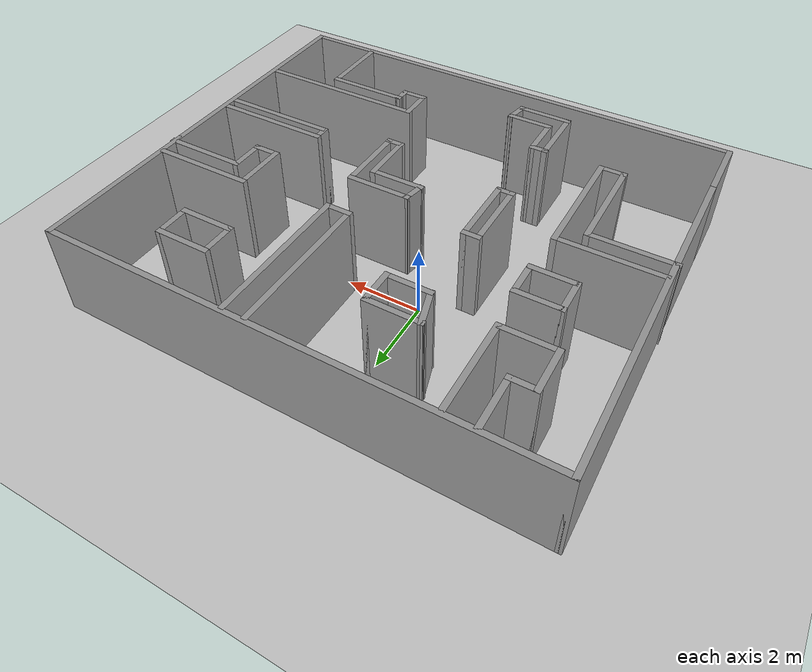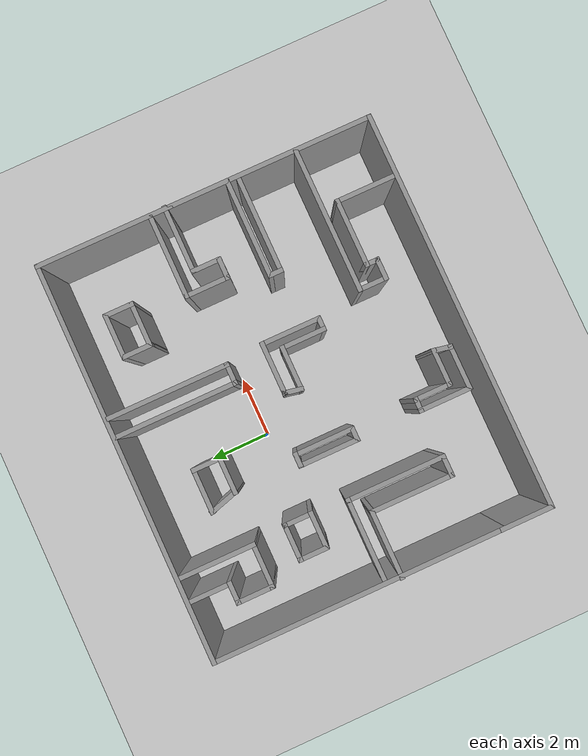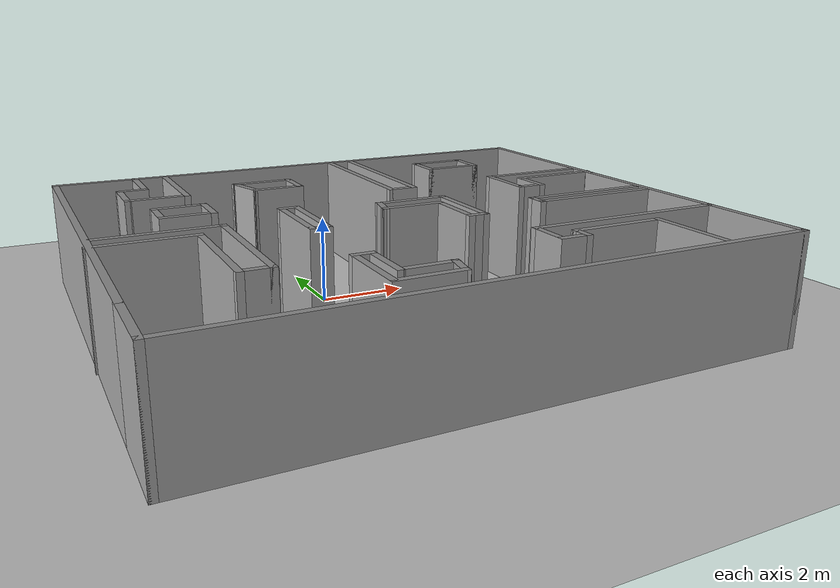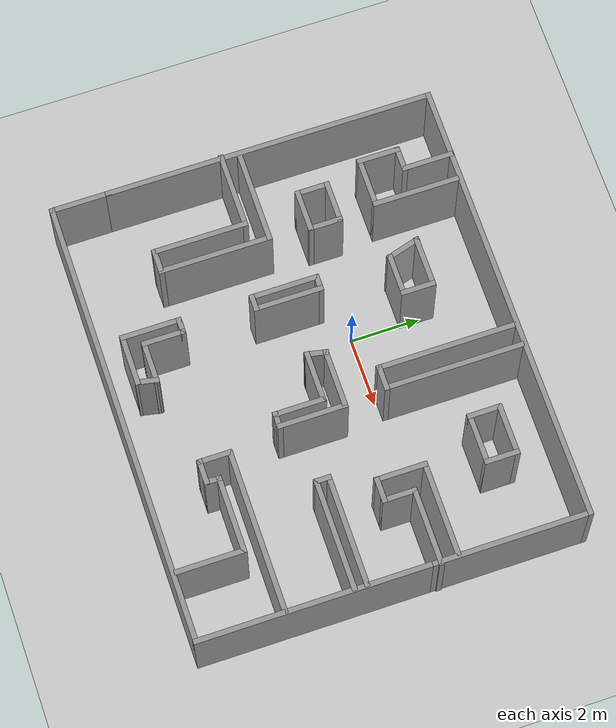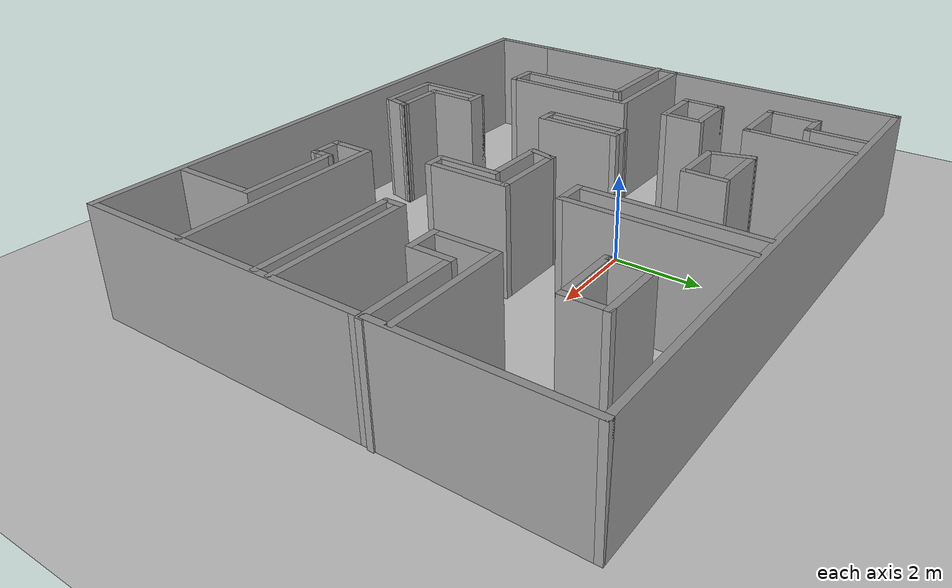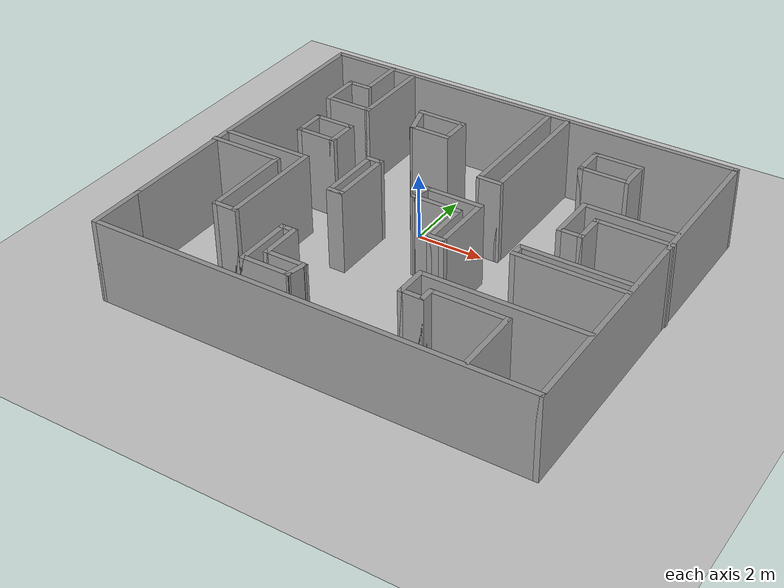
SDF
<sdf version="1.7">
 <world name="default">
  <light name="sun" type="directional">
   <pose>0 0 10 0 -0 0</pose>
   <diffuse>0.8 0.8 0.8 1</diffuse>
   <specular>0.2 0.2 0.2 1</specular>
   <attenuation>
    <range>1000</range>
    <constant>0.9</constant>
    <linear>0.01</linear>
    <quadratic>0.001</quadratic>
   </attenuation>
   <direction>-0.5 0.1 -0.9</direction>
   <spot><inner_angle>0</inner_angle><outer_angle>0</outer_angle><falloff>0</falloff></spot>
  </light>
  <model name="ground_plane">
   <static>1</static>
   <link name="link">
    <collision name="collision">
     <geometry><plane><normal>0 0 1</normal><size>100 100</size></plane></geometry>
     <surface><friction><ode><mu>100</mu><mu2>50</mu2></ode></friction></surface>
    </collision>
    <visual name="visual">
     <cast_shadows>0</cast_shadows>
     <geometry><plane><normal>0 0 1</normal><size>100 100</size></plane></geometry>
     <material>
      <script><uri>file://media/materials/scripts/gazebo.material</uri><name>Gazebo/Grey</name></script>
     </material>
    </visual>
   </link>
  </model>
  <gravity>0 0 -9.8</gravity>
  <magnetic_field>6e-06 2.3e-05 -4.2e-05</magnetic_field>
  <atmosphere type="adiabatic"/>
  <physics type="ode">
   <max_step_size>0.001</max_step_size>
   <real_time_factor>1</real_time_factor>
   <real_time_update_rate>1000</real_time_update_rate>
  </physics>
  <scene><ambient>0.4 0.4 0.4 1</ambient><background>0.7 0.7 0.7 1</background><shadows>1</shadows></scene>
  <audio><device>default</device></audio>
  <spherical_coordinates>
   <surface_model>EARTH_WGS84</surface_model>
   <latitude_deg>0</latitude_deg>
   <longitude_deg>0</longitude_deg>
   <elevation>0</elevation>
   <heading_deg>0</heading_deg>
  </spherical_coordinates>
  <model name="world1_test_turtlebot">
   <pose>1.04362 -1.395 0 0 -0 0</pose>
   <link name="Wall_102">
    <collision name="Wall_102_Collision">
     <geometry><box><size>0.5 0.15 2.5</size></box></geometry>
     <pose>0 0 1.25 0 -0 0</pose>
    </collision>
    <visual name="Wall_102_Visual">
     <pose>0 0 1.25 0 -0 0</pose>
     <geometry><box><size>0.5 0.15 2.5</size></box></geometry>
     <material>
      <script><uri>file://media/materials/scripts/gazebo.material</uri><name>Gazebo/Grey</name></script>
      <ambient>1 1 1 1</ambient>
     </material>
     <meta><layer>0</layer></meta>
    </visual>
    <pose>-2.06775 -3.15934 0 0 -0 0</pose>
   </link>
   <link name="Wall_103">
    <collision name="Wall_103_Collision">
     <geometry><box><size>1.25 0.15 2.5</size></box></geometry>
     <pose>0 0 1.25 0 -0 0</pose>
    </collision>
    <visual name="Wall_103_Visual">
     <pose>0 0 1.25 0 -0 0</pose>
     <geometry><box><size>1.25 0.15 2.5</size></box></geometry>
     <material>
      <script><uri>file://media/materials/scripts/gazebo.material</uri><name>Gazebo/Grey</name></script>
      <ambient>1 1 1 1</ambient>
     </material>
     <meta><layer>0</layer></meta>
    </visual>
    <pose>-1.89275 -3.70934 0 0 -0 -1.5708</pose>
   </link>
   <link name="Wall_104">
    <collision name="Wall_104_Collision">
     <geometry><box><size>1.25 0.15 2.5</size></box></geometry>
     <pose>0 0 1.25 0 -0 0</pose>
    </collision>
    <visual name="Wall_104_Visual">
     <pose>0 0 1.25 0 -0 0</pose>
     <geometry><box><size>1.25 0.15 2.5</size></box></geometry>
     <material>
      <script><uri>file://media/materials/scripts/gazebo.material</uri><name>Gazebo/Grey</name></script>
      <ambient>1 1 1 1</ambient>
     </material>
     <meta><layer>0</layer></meta>
    </visual>
    <pose>-1.34275 -4.25934 0 0 -0 0</pose>
   </link>
   <link name="Wall_106">
    <collision name="Wall_106_Collision">
     <geometry><box><size>0.659902 0.15 2.5</size></box></geometry>
     <pose>0 0 1.25 0 -0 0</pose>
    </collision>
    <visual name="Wall_106_Visual">
     <pose>0 0 1.25 0 -0 0</pose>
     <geometry><box><size>0.659902 0.15 2.5</size></box></geometry>
     <material>
      <script><uri>file://media/materials/scripts/gazebo.material</uri><name>Gazebo/Grey</name></script>
      <ambient>1 1 1 1</ambient>
     </material>
     <meta><layer>0</layer></meta>
    </visual>
    <pose>-0.842751 -4.50934 0 0 -0 1.3734</pose>
   </link>
   <link name="Wall_108">
    <collision name="Wall_108_Collision">
     <geometry><box><size>1.75 0.15 2.5</size></box></geometry>
     <pose>0 0 1.25 0 -0 0</pose>
    </collision>
    <visual name="Wall_108_Visual">
     <pose>0 0 1.25 0 -0 0</pose>
     <geometry><box><size>1.75 0.15 2.5</size></box></geometry>
     <material>
      <script><uri>file://media/materials/scripts/gazebo.material</uri><name>Gazebo/Grey</name></script>
      <ambient>1 1 1 1</ambient>
     </material>
     <meta><layer>0</layer></meta>
    </visual>
    <pose>0.708396 0.310249 0 0 -0 0</pose>
   </link>
   <link name="Wall_109">
    <collision name="Wall_109_Collision">
     <geometry><box><size>2 0.15 2.5</size></box></geometry>
     <pose>0 0 1.25 0 -0 0</pose>
    </collision>
    <visual name="Wall_109_Visual">
     <pose>0 0 1.25 0 -0 0</pose>
     <geometry><box><size>2 0.15 2.5</size></box></geometry>
     <material>
      <script><uri>file://media/materials/scripts/gazebo.material</uri><name>Gazebo/Grey</name></script>
      <ambient>1 1 1 1</ambient>
     </material>
     <meta><layer>0</layer></meta>
    </visual>
    <pose>1.5084 -0.614751 0 0 -0 -1.5708</pose>
   </link>
   <link name="Wall_110">
    <collision name="Wall_110_Collision">
     <geometry><box><size>0.5 0.15 2.5</size></box></geometry>
     <pose>0 0 1.25 0 -0 0</pose>
    </collision>
    <visual name="Wall_110_Visual">
     <pose>0 0 1.25 0 -0 0</pose>
     <geometry><box><size>0.5 0.15 2.5</size></box></geometry>
     <material>
      <script><uri>file://media/materials/scripts/gazebo.material</uri><name>Gazebo/Grey</name></script>
      <ambient>1 1 1 1</ambient>
     </material>
     <meta><layer>0</layer></meta>
    </visual>
    <pose>1.3334 -1.53975 0 0 -0 3.14159</pose>
   </link>
   <link name="Wall_111">
    <collision name="Wall_111_Collision">
     <geometry><box><size>1.5 0.15 2.5</size></box></geometry>
     <pose>0 0 1.25 0 -0 0</pose>
    </collision>
    <visual name="Wall_111_Visual">
     <pose>0 0 1.25 0 -0 0</pose>
     <geometry><box><size>1.5 0.15 2.5</size></box></geometry>
     <material>
      <script><uri>file://media/materials/scripts/gazebo.material</uri><name>Gazebo/Grey</name></script>
      <ambient>1 1 1 1</ambient>
     </material>
     <meta><layer>0</layer></meta>
    </visual>
    <pose>1.1584 -0.864751 0 0 -0 1.5708</pose>
   </link>
   <link name="Wall_112">
    <collision name="Wall_112_Collision">
     <geometry><box><size>1.5 0.15 2.5</size></box></geometry>
     <pose>0 0 1.25 0 -0 0</pose>
    </collision>
    <visual name="Wall_112_Visual">
     <pose>0 0 1.25 0 -0 0</pose>
     <geometry><box><size>1.5 0.15 2.5</size></box></geometry>
     <material>
      <script><uri>file://media/materials/scripts/gazebo.material</uri><name>Gazebo/Grey</name></script>
      <ambient>1 1 1 1</ambient>
     </material>
     <meta><layer>0</layer></meta>
    </visual>
    <pose>0.483396 -0.189751 0 0 -0 3.14159</pose>
   </link>
   <link name="Wall_113">
    <collision name="Wall_113_Collision">
     <geometry><box><size>0.659902 0.15 2.5</size></box></geometry>
     <pose>0 0 1.25 0 -0 0</pose>
    </collision>
    <visual name="Wall_113_Visual">
     <pose>0 0 1.25 0 -0 0</pose>
     <geometry><box><size>0.659902 0.15 2.5</size></box></geometry>
     <material>
      <script><uri>file://media/materials/scripts/gazebo.material</uri><name>Gazebo/Grey</name></script>
      <ambient>1 1 1 1</ambient>
     </material>
     <meta><layer>0</layer></meta>
    </visual>
    <pose>-0.141604 0.060249 0 0 -0 1.3734</pose>
   </link>
   <link name="Wall_115">
    <collision name="Wall_115_Collision">
     <geometry><box><size>2 0.15 2.5</size></box></geometry>
     <pose>0 0 1.25 0 -0 0</pose>
    </collision>
    <visual name="Wall_115_Visual">
     <pose>0 0 1.25 0 -0 0</pose>
     <geometry><box><size>2 0.15 2.5</size></box></geometry>
     <material>
      <script><uri>file://media/materials/scripts/gazebo.material</uri><name>Gazebo/Grey</name></script>
      <ambient>1 1 1 1</ambient>
     </material>
     <meta><layer>0</layer></meta>
    </visual>
    <pose>-2.24275 -0.152138 0 0 -0 -1.5708</pose>
   </link>
   <link name="Wall_116">
    <collision name="Wall_116_Collision">
     <geometry><box><size>0.5 0.15 2.5</size></box></geometry>
     <pose>0 0 1.25 0 -0 0</pose>
    </collision>
    <visual name="Wall_116_Visual">
     <pose>0 0 1.25 0 -0 0</pose>
     <geometry><box><size>0.5 0.15 2.5</size></box></geometry>
     <material>
      <script><uri>file://media/materials/scripts/gazebo.material</uri><name>Gazebo/Grey</name></script>
      <ambient>1 1 1 1</ambient>
     </material>
     <meta><layer>0</layer></meta>
    </visual>
    <pose>-2.06775 -1.07714 0 0 -0 0</pose>
   </link>
   <link name="Wall_117">
    <collision name="Wall_117_Collision">
     <geometry><box><size>2 0.15 2.5</size></box></geometry>
     <pose>0 0 1.25 0 -0 0</pose>
    </collision>
    <visual name="Wall_117_Visual">
     <pose>0 0 1.25 0 -0 0</pose>
     <geometry><box><size>2 0.15 2.5</size></box></geometry>
     <material>
      <script><uri>file://media/materials/scripts/gazebo.material</uri><name>Gazebo/Grey</name></script>
      <ambient>1 1 1 1</ambient>
     </material>
     <meta><layer>0</layer></meta>
    </visual>
    <pose>-1.89275 -0.152138 0 0 -0 1.5708</pose>
   </link>
   <link name="Wall_118">
    <collision name="Wall_118_Collision">
     <geometry><box><size>0.5 0.15 2.5</size></box></geometry>
     <pose>0 0 1.25 0 -0 0</pose>
    </collision>
    <visual name="Wall_118_Visual">
     <pose>0 0 1.25 0 -0 0</pose>
     <geometry><box><size>0.5 0.15 2.5</size></box></geometry>
     <material>
      <script><uri>file://media/materials/scripts/gazebo.material</uri><name>Gazebo/Grey</name></script>
      <ambient>1 1 1 1</ambient>
     </material>
     <meta><layer>0</layer></meta>
    </visual>
    <pose>-2.06775 0.772861 0 0 -0 3.14159</pose>
   </link>
   <link name="Wall_16">
    <collision name="Wall_16_Collision">
     <geometry><box><size>1.75 0.15 2.5</size></box></geometry>
     <pose>0 0 1.25 0 -0 0</pose>
    </collision>
    <visual name="Wall_16_Visual">
     <pose>0 0 1.25 0 -0 0</pose>
     <geometry><box><size>1.75 0.15 2.5</size></box></geometry>
     <material>
      <script><uri>file://media/materials/scripts/gazebo.material</uri><name>Gazebo/Grey</name></script>
      <ambient>1 1 1 1</ambient>
     </material>
     <meta><layer>0</layer></meta>
    </visual>
    <pose>-6.42362 -4.675 0 0 -0 -1.5708</pose>
   </link>
   <link name="Wall_17">
    <collision name="Wall_17_Collision">
     <geometry><box><size>13 0.15 2.5</size></box></geometry>
     <pose>0 0 1.25 0 -0 0</pose>
    </collision>
    <visual name="Wall_17_Visual">
     <pose>0 0 1.25 0 -0 0</pose>
     <geometry><box><size>13 0.15 2.5</size></box></geometry>
     <material>
      <script><uri>file://media/materials/scripts/gazebo.material</uri><name>Gazebo/Grey</name></script>
      <ambient>1 1 1 1</ambient>
     </material>
     <meta><layer>0</layer></meta>
    </visual>
    <pose>0.001382 -5.475 0 0 -0 0</pose>
   </link>
   <link name="Wall_18">
    <collision name="Wall_18_Collision">
     <geometry><box><size>6.75 0.15 2.5</size></box></geometry>
     <pose>0 0 1.25 0 -0 0</pose>
    </collision>
    <visual name="Wall_18_Visual">
     <pose>0 0 1.25 0 -0 0</pose>
     <geometry><box><size>6.75 0.15 2.5</size></box></geometry>
     <material>
      <script><uri>file://media/materials/scripts/gazebo.material</uri><name>Gazebo/Grey</name></script>
      <ambient>1 1 1 1</ambient>
     </material>
     <meta><layer>0</layer></meta>
    </visual>
    <pose>6.42638 -2.175 0 0 -0 1.5708</pose>
   </link>
   <link name="Wall_20">
    <collision name="Wall_20_Collision">
     <geometry><box><size>4.5 0.15 2.5</size></box></geometry>
     <pose>0 0 1.25 0 -0 0</pose>
    </collision>
    <visual name="Wall_20_Visual">
     <pose>0 0 1.25 0 -0 0</pose>
     <geometry><box><size>4.5 0.15 2.5</size></box></geometry>
     <material>
      <script><uri>file://media/materials/scripts/gazebo.material</uri><name>Gazebo/Grey</name></script>
      <ambient>1 1 1 1</ambient>
     </material>
     <meta><layer>0</layer></meta>
    </visual>
    <pose>6.42638 3.3 0 0 -0 1.5708</pose>
   </link>
   <link name="Wall_23">
    <collision name="Wall_23_Collision">
     <geometry><box><size>9.5 0.15 2.5</size></box></geometry>
     <pose>0 0 1.25 0 -0 0</pose>
    </collision>
    <visual name="Wall_23_Visual">
     <pose>0 0 1.25 0 -0 0</pose>
     <geometry><box><size>9.5 0.15 2.5</size></box></geometry>
     <material>
      <script><uri>file://media/materials/scripts/gazebo.material</uri><name>Gazebo/Grey</name></script>
      <ambient>1 1 1 1</ambient>
     </material>
     <meta><layer>0</layer></meta>
    </visual>
    <pose>-6.42362 0.8 0 0 -0 1.5708</pose>
   </link>
   <link name="Wall_25">
    <collision name="Wall_25_Collision">
     <geometry><box><size>13 0.15 2.5</size></box></geometry>
     <pose>0 0 1.25 0 -0 0</pose>
    </collision>
    <visual name="Wall_25_Visual">
     <pose>0 0 1.25 0 -0 0</pose>
     <geometry><box><size>13 0.15 2.5</size></box></geometry>
     <material>
      <script><uri>file://media/materials/scripts/gazebo.material</uri><name>Gazebo/Grey</name></script>
      <ambient>1 1 1 1</ambient>
     </material>
     <meta><layer>0</layer></meta>
    </visual>
    <pose>0.001382 5.475 0 0 -0 0</pose>
   </link>
   <link name="Wall_27">
    <collision name="Wall_27_Collision">
     <geometry><box><size>2.75 0.15 2.5</size></box></geometry>
     <pose>0 0 1.25 0 -0 0</pose>
    </collision>
    <visual name="Wall_27_Visual">
     <pose>0 0 1.25 0 -0 0</pose>
     <geometry><box><size>2.75 0.15 2.5</size></box></geometry>
     <material>
      <script><uri>file://media/materials/scripts/gazebo.material</uri><name>Gazebo/Grey</name></script>
      <ambient>1 1 1 1</ambient>
     </material>
     <meta><layer>0</layer></meta>
    </visual>
    <pose>5.06 1.78351 0 0 -0 3.14159</pose>
   </link>
   <link name="Wall_28">
    <collision name="Wall_28_Collision">
     <geometry><box><size>1.5 0.15 2.5</size></box></geometry>
     <pose>0 0 1.25 0 -0 0</pose>
    </collision>
    <visual name="Wall_28_Visual">
     <pose>0 0 1.25 0 -0 0</pose>
     <geometry><box><size>1.5 0.15 2.5</size></box></geometry>
     <material>
      <script><uri>file://media/materials/scripts/gazebo.material</uri><name>Gazebo/Grey</name></script>
      <ambient>1 1 1 1</ambient>
     </material>
     <meta><layer>0</layer></meta>
    </visual>
    <pose>3.76 1.10851 0 0 -0 -1.5708</pose>
   </link>
   <link name="Wall_29">
    <collision name="Wall_29_Collision">
     <geometry><box><size>0.75 0.15 2.5</size></box></geometry>
     <pose>0 0 1.25 0 -0 0</pose>
    </collision>
    <visual name="Wall_29_Visual">
     <pose>0 0 1.25 0 -0 0</pose>
     <geometry><box><size>0.75 0.15 2.5</size></box></geometry>
     <material>
      <script><uri>file://media/materials/scripts/gazebo.material</uri><name>Gazebo/Grey</name></script>
      <ambient>1 1 1 1</ambient>
     </material>
     <meta><layer>0</layer></meta>
    </visual>
    <pose>4.06 0.433515 0 0 -0 0</pose>
   </link>
   <link name="Wall_30">
    <collision name="Wall_30_Collision">
     <geometry><box><size>1 0.15 2.5</size></box></geometry>
     <pose>0 0 1.25 0 -0 0</pose>
    </collision>
    <visual name="Wall_30_Visual">
     <pose>0 0 1.25 0 -0 0</pose>
     <geometry><box><size>1 0.15 2.5</size></box></geometry>
     <material>
      <script><uri>file://media/materials/scripts/gazebo.material</uri><name>Gazebo/Grey</name></script>
      <ambient>1 1 1 1</ambient>
     </material>
     <meta><layer>0</layer></meta>
    </visual>
    <pose>4.36 0.858515 0 0 -0 1.5708</pose>
   </link>
   <link name="Wall_31">
    <collision name="Wall_31_Collision">
     <geometry><box><size>2.25 0.15 2.5</size></box></geometry>
     <pose>0 0 1.25 0 -0 0</pose>
    </collision>
    <visual name="Wall_31_Visual">
     <pose>0 0 1.25 0 -0 0</pose>
     <geometry><box><size>2.25 0.15 2.5</size></box></geometry>
     <material>
      <script><uri>file://media/materials/scripts/gazebo.material</uri><name>Gazebo/Grey</name></script>
      <ambient>1 1 1 1</ambient>
     </material>
     <meta><layer>0</layer></meta>
    </visual>
    <pose>5.41 1.28351 0 0 -0 0</pose>
   </link>
   <link name="Wall_33">
    <collision name="Wall_33_Collision">
     <geometry><box><size>3.25 0.15 2.5</size></box></geometry>
     <pose>0 0 1.25 0 -0 0</pose>
    </collision>
    <visual name="Wall_33_Visual">
     <pose>0 0 1.25 0 -0 0</pose>
     <geometry><box><size>3.25 0.15 2.5</size></box></geometry>
     <material>
      <script><uri>file://media/materials/scripts/gazebo.material</uri><name>Gazebo/Grey</name></script>
      <ambient>1 1 1 1</ambient>
     </material>
     <meta><layer>0</layer></meta>
    </visual>
    <pose>4.84059 -0.755474 0 0 -0 3.14159</pose>
   </link>
   <link name="Wall_36">
    <collision name="Wall_36_Collision">
     <geometry><box><size>0.5 0.15 2.5</size></box></geometry>
     <pose>0 0 1.25 0 -0 0</pose>
    </collision>
    <visual name="Wall_36_Visual">
     <pose>0 0 1.25 0 -0 0</pose>
     <geometry><box><size>0.5 0.15 2.5</size></box></geometry>
     <material>
      <script><uri>file://media/materials/scripts/gazebo.material</uri><name>Gazebo/Grey</name></script>
      <ambient>1 1 1 1</ambient>
     </material>
     <meta><layer>0</layer></meta>
    </visual>
    <pose>3.29059 -0.930474 0 0 -0 -1.5708</pose>
   </link>
   <link name="Wall_37">
    <collision name="Wall_37_Collision">
     <geometry><box><size>3.25 0.15 2.5</size></box></geometry>
     <pose>0 0 1.25 0 -0 0</pose>
    </collision>
    <visual name="Wall_37_Visual">
     <pose>0 0 1.25 0 -0 0</pose>
     <geometry><box><size>3.25 0.15 2.5</size></box></geometry>
     <material>
      <script><uri>file://media/materials/scripts/gazebo.material</uri><name>Gazebo/Grey</name></script>
      <ambient>1 1 1 1</ambient>
     </material>
     <meta><layer>0</layer></meta>
    </visual>
    <pose>4.84059 -1.10547 0 0 -0 0</pose>
   </link>
   <link name="Wall_39">
    <collision name="Wall_39_Collision">
     <geometry><box><size>1.5 0.15 2.5</size></box></geometry>
     <pose>0 0 1.25 0 -0 0</pose>
    </collision>
    <visual name="Wall_39_Visual">
     <pose>0 0 1.25 0 -0 0</pose>
     <geometry><box><size>1.5 0.15 2.5</size></box></geometry>
     <material>
      <script><uri>file://media/materials/scripts/gazebo.material</uri><name>Gazebo/Grey</name></script>
      <ambient>1 1 1 1</ambient>
     </material>
     <meta><layer>0</layer></meta>
    </visual>
    <pose>-4.53012 4.77934 0 0 -0 -1.5708</pose>
   </link>
   <link name="Wall_40">
    <collision name="Wall_40_Collision">
     <geometry><box><size>0.75 0.15 2.5</size></box></geometry>
     <pose>0 0 1.25 0 -0 0</pose>
    </collision>
    <visual name="Wall_40_Visual">
     <pose>0 0 1.25 0 -0 0</pose>
     <geometry><box><size>0.75 0.15 2.5</size></box></geometry>
     <material>
      <script><uri>file://media/materials/scripts/gazebo.material</uri><name>Gazebo/Grey</name></script>
      <ambient>1 1 1 1</ambient>
     </material>
     <meta><layer>0</layer></meta>
    </visual>
    <pose>-4.83012 4.10434 0 0 -0 3.14159</pose>
   </link>
   <link name="Wall_41">
    <collision name="Wall_41_Collision">
     <geometry><box><size>1.25 0.15 2.5</size></box></geometry>
     <pose>0 0 1.25 0 -0 0</pose>
    </collision>
    <visual name="Wall_41_Visual">
     <pose>0 0 1.25 0 -0 0</pose>
     <geometry><box><size>1.25 0.15 2.5</size></box></geometry>
     <material>
      <script><uri>file://media/materials/scripts/gazebo.material</uri><name>Gazebo/Grey</name></script>
      <ambient>1 1 1 1</ambient>
     </material>
     <meta><layer>0</layer></meta>
    </visual>
    <pose>-5.13012 3.55434 0 0 -0 -1.5708</pose>
   </link>
   <link name="Wall_42">
    <collision name="Wall_42_Collision">
     <geometry><box><size>1.5 0.15 2.5</size></box></geometry>
     <pose>0 0 1.25 0 -0 0</pose>
    </collision>
    <visual name="Wall_42_Visual">
     <pose>0 0 1.25 0 -0 0</pose>
     <geometry><box><size>1.5 0.15 2.5</size></box></geometry>
     <material>
      <script><uri>file://media/materials/scripts/gazebo.material</uri><name>Gazebo/Grey</name></script>
      <ambient>1 1 1 1</ambient>
     </material>
     <meta><layer>0</layer></meta>
    </visual>
    <pose>-4.45512 3.00434 0 0 -0 0</pose>
   </link>
   <link name="Wall_43">
    <collision name="Wall_43_Collision">
     <geometry><box><size>2.5 0.15 2.5</size></box></geometry>
     <pose>0 0 1.25 0 -0 0</pose>
    </collision>
    <visual name="Wall_43_Visual">
     <pose>0 0 1.25 0 -0 0</pose>
     <geometry><box><size>2.5 0.15 2.5</size></box></geometry>
     <material>
      <script><uri>file://media/materials/scripts/gazebo.material</uri><name>Gazebo/Grey</name></script>
      <ambient>1 1 1 1</ambient>
     </material>
     <meta><layer>0</layer></meta>
    </visual>
    <pose>-3.78012 4.17934 0 0 -0 1.5708</pose>
   </link>
   <link name="Wall_47">
    <collision name="Wall_47_Collision">
     <geometry><box><size>1 0.15 2.5</size></box></geometry>
     <pose>0 0 1.25 0 -0 0</pose>
    </collision>
    <visual name="Wall_47_Visual">
     <pose>0 0 1.25 0 -0 0</pose>
     <geometry><box><size>1 0.15 2.5</size></box></geometry>
     <material>
      <script><uri>file://media/materials/scripts/gazebo.material</uri><name>Gazebo/Grey</name></script>
      <ambient>1 1 1 1</ambient>
     </material>
     <meta><layer>0</layer></meta>
    </visual>
    <pose>-4.75719 1.50007 0 0 -0 -1.5708</pose>
   </link>
   <link name="Wall_48">
    <collision name="Wall_48_Collision">
     <geometry><box><size>1.25 0.15 2.5</size></box></geometry>
     <pose>0 0 1.25 0 -0 0</pose>
    </collision>
    <visual name="Wall_48_Visual">
     <pose>0 0 1.25 0 -0 0</pose>
     <geometry><box><size>1.25 0.15 2.5</size></box></geometry>
     <material>
      <script><uri>file://media/materials/scripts/gazebo.material</uri><name>Gazebo/Grey</name></script>
      <ambient>1 1 1 1</ambient>
     </material>
     <meta><layer>0</layer></meta>
    </visual>
    <pose>-4.20719 1.07507 0 0 -0 0</pose>
   </link>
   <link name="Wall_51">
    <collision name="Wall_51_Collision">
     <geometry><box><size>1.25 0.15 2.5</size></box></geometry>
     <pose>0 0 1.25 0 -0 0</pose>
    </collision>
    <visual name="Wall_51_Visual">
     <pose>0 0 1.25 0 -0 0</pose>
     <geometry><box><size>1.25 0.15 2.5</size></box></geometry>
     <material>
      <script><uri>file://media/materials/scripts/gazebo.material</uri><name>Gazebo/Grey</name></script>
      <ambient>1 1 1 1</ambient>
     </material>
     <meta><layer>0</layer></meta>
    </visual>
    <pose>-4.20719 1.92507 0 0 -0 0</pose>
   </link>
   <link name="Wall_52">
    <collision name="Wall_52_Collision">
     <geometry><box><size>1 0.15 2.5</size></box></geometry>
     <pose>0 0 1.25 0 -0 0</pose>
    </collision>
    <visual name="Wall_52_Visual">
     <pose>0 0 1.25 0 -0 0</pose>
     <geometry><box><size>1 0.15 2.5</size></box></geometry>
     <material>
      <script><uri>file://media/materials/scripts/gazebo.material</uri><name>Gazebo/Grey</name></script>
      <ambient>1 1 1 1</ambient>
     </material>
     <meta><layer>0</layer></meta>
    </visual>
    <pose>-3.65719 1.50007 0 0 -0 -1.5708</pose>
   </link>
   <link name="Wall_60">
    <collision name="Wall_60_Collision">
     <geometry><box><size>4.75 0.15 2.5</size></box></geometry>
     <pose>0 0 1.25 0 -0 0</pose>
    </collision>
    <visual name="Wall_60_Visual">
     <pose>0 0 1.25 0 -0 0</pose>
     <geometry><box><size>4.75 0.15 2.5</size></box></geometry>
     <material>
      <script><uri>file://media/materials/scripts/gazebo.material</uri><name>Gazebo/Grey</name></script>
      <ambient>1 1 1 1</ambient>
     </material>
     <meta><layer>0</layer></meta>
    </visual>
    <pose>4.08497 -3.02056 0 0 -0 3.14159</pose>
   </link>
   <link name="Wall_61">
    <collision name="Wall_61_Collision">
     <geometry><box><size>1 0.15 2.5</size></box></geometry>
     <pose>0 0 1.25 0 -0 0</pose>
    </collision>
    <visual name="Wall_61_Visual">
     <pose>0 0 1.25 0 -0 0</pose>
     <geometry><box><size>1 0.15 2.5</size></box></geometry>
     <material>
      <script><uri>file://media/materials/scripts/gazebo.material</uri><name>Gazebo/Grey</name></script>
      <ambient>1 1 1 1</ambient>
     </material>
     <meta><layer>0</layer></meta>
    </visual>
    <pose>1.78497 -3.44556 0 0 -0 -1.5708</pose>
   </link>
   <link name="Wall_62">
    <collision name="Wall_62_Collision">
     <geometry><box><size>0.75 0.15 2.5</size></box></geometry>
     <pose>0 0 1.25 0 -0 0</pose>
    </collision>
    <visual name="Wall_62_Visual">
     <pose>0 0 1.25 0 -0 0</pose>
     <geometry><box><size>0.75 0.15 2.5</size></box></geometry>
     <material>
      <script><uri>file://media/materials/scripts/gazebo.material</uri><name>Gazebo/Grey</name></script>
      <ambient>1 1 1 1</ambient>
     </material>
     <meta><layer>0</layer></meta>
    </visual>
    <pose>2.08497 -3.87056 0 0 -0 0</pose>
   </link>
   <link name="Wall_63">
    <collision name="Wall_63_Collision">
     <geometry><box><size>0.5 0.15 2.5</size></box></geometry>
     <pose>0 0 1.25 0 -0 0</pose>
    </collision>
    <visual name="Wall_63_Visual">
     <pose>0 0 1.25 0 -0 0</pose>
     <geometry><box><size>0.5 0.15 2.5</size></box></geometry>
     <material>
      <script><uri>file://media/materials/scripts/gazebo.material</uri><name>Gazebo/Grey</name></script>
      <ambient>1 1 1 1</ambient>
     </material>
     <meta><layer>0</layer></meta>
    </visual>
    <pose>2.38497 -3.69556 0 0 -0 1.5708</pose>
   </link>
   <link name="Wall_64">
    <collision name="Wall_64_Collision">
     <geometry><box><size>2.25 0.15 2.5</size></box></geometry>
     <pose>0 0 1.25 0 -0 0</pose>
    </collision>
    <visual name="Wall_64_Visual">
     <pose>0 0 1.25 0 -0 0</pose>
     <geometry><box><size>2.25 0.15 2.5</size></box></geometry>
     <material>
      <script><uri>file://media/materials/scripts/gazebo.material</uri><name>Gazebo/Grey</name></script>
      <ambient>1 1 1 1</ambient>
     </material>
     <meta><layer>0</layer></meta>
    </visual>
    <pose>3.43497 -3.52056 0 0 -0 0</pose>
   </link>
   <link name="Wall_65">
    <collision name="Wall_65_Collision">
     <geometry><box><size>2 0.15 2.5</size></box></geometry>
     <pose>0 0 1.25 0 -0 0</pose>
    </collision>
    <visual name="Wall_65_Visual">
     <pose>0 0 1.25 0 -0 0</pose>
     <geometry><box><size>2 0.15 2.5</size></box></geometry>
     <material>
      <script><uri>file://media/materials/scripts/gazebo.material</uri><name>Gazebo/Grey</name></script>
      <ambient>1 1 1 1</ambient>
     </material>
     <meta><layer>0</layer></meta>
    </visual>
    <pose>4.48497 -4.44556 0 0 -0 -1.5708</pose>
   </link>
   <link name="Wall_67">
    <collision name="Wall_67_Collision">
     <geometry><box><size>1 0.15 2.5</size></box></geometry>
     <pose>0 0 1.25 0 -0 0</pose>
    </collision>
    <visual name="Wall_67_Visual">
     <pose>0 0 1.25 0 -0 0</pose>
     <geometry><box><size>1 0.15 2.5</size></box></geometry>
     <material>
      <script><uri>file://media/materials/scripts/gazebo.material</uri><name>Gazebo/Grey</name></script>
      <ambient>1 1 1 1</ambient>
     </material>
     <meta><layer>0</layer></meta>
    </visual>
    <pose>2.86911 3.79432 0 0 -0 -1.5708</pose>
   </link>
   <link name="Wall_68">
    <collision name="Wall_68_Collision">
     <geometry><box><size>1.5 0.15 2.5</size></box></geometry>
     <pose>0 0 1.25 0 -0 0</pose>
    </collision>
    <visual name="Wall_68_Visual">
     <pose>0 0 1.25 0 -0 0</pose>
     <geometry><box><size>1.5 0.15 2.5</size></box></geometry>
     <material>
      <script><uri>file://media/materials/scripts/gazebo.material</uri><name>Gazebo/Grey</name></script>
      <ambient>1 1 1 1</ambient>
     </material>
     <meta><layer>0</layer></meta>
    </visual>
    <pose>3.54411 3.36932 0 0 -0 0</pose>
   </link>
   <link name="Wall_69">
    <collision name="Wall_69_Collision">
     <geometry><box><size>1 0.15 2.5</size></box></geometry>
     <pose>0 0 1.25 0 -0 0</pose>
    </collision>
    <visual name="Wall_69_Visual">
     <pose>0 0 1.25 0 -0 0</pose>
     <geometry><box><size>1 0.15 2.5</size></box></geometry>
     <material>
      <script><uri>file://media/materials/scripts/gazebo.material</uri><name>Gazebo/Grey</name></script>
      <ambient>1 1 1 1</ambient>
     </material>
     <meta><layer>0</layer></meta>
    </visual>
    <pose>4.21911 3.79432 0 0 -0 1.5708</pose>
   </link>
   <link name="Wall_70">
    <collision name="Wall_70_Collision">
     <geometry><box><size>1.5 0.15 2.5</size></box></geometry>
     <pose>0 0 1.25 0 -0 0</pose>
    </collision>
    <visual name="Wall_70_Visual">
     <pose>0 0 1.25 0 -0 0</pose>
     <geometry><box><size>1.5 0.15 2.5</size></box></geometry>
     <material>
      <script><uri>file://media/materials/scripts/gazebo.material</uri><name>Gazebo/Grey</name></script>
      <ambient>1 1 1 1</ambient>
     </material>
     <meta><layer>0</layer></meta>
    </visual>
    <pose>3.54411 4.21932 0 0 -0 3.14159</pose>
   </link>
   <link name="Wall_78">
    <collision name="Wall_78_Collision">
     <geometry><box><size>2.75 0.15 2.5</size></box></geometry>
     <pose>0 0 1.25 0 -0 0</pose>
    </collision>
    <visual name="Wall_78_Visual">
     <pose>0 0 1.25 0 -0 0</pose>
     <geometry><box><size>2.75 0.15 2.5</size></box></geometry>
     <material>
      <script><uri>file://media/materials/scripts/gazebo.material</uri><name>Gazebo/Grey</name></script>
      <ambient>1 1 1 1</ambient>
     </material>
     <meta><layer>0</layer></meta>
    </visual>
    <pose>-5.06 -0.082971 0 0 -0 0</pose>
   </link>
   <link name="Wall_79">
    <collision name="Wall_79_Collision">
     <geometry><box><size>3.25 0.15 2.5</size></box></geometry>
     <pose>0 0 1.25 0 -0 0</pose>
    </collision>
    <visual name="Wall_79_Visual">
     <pose>0 0 1.25 0 -0 0</pose>
     <geometry><box><size>3.25 0.15 2.5</size></box></geometry>
     <material>
      <script><uri>file://media/materials/scripts/gazebo.material</uri><name>Gazebo/Grey</name></script>
      <ambient>1 1 1 1</ambient>
     </material>
     <meta><layer>0</layer></meta>
    </visual>
    <pose>-3.76 -1.63297 0 0 -0 -1.5708</pose>
   </link>
   <link name="Wall_80">
    <collision name="Wall_80_Collision">
     <geometry><box><size>0.75 0.15 2.5</size></box></geometry>
     <pose>0 0 1.25 0 -0 0</pose>
    </collision>
    <visual name="Wall_80_Visual">
     <pose>0 0 1.25 0 -0 0</pose>
     <geometry><box><size>0.75 0.15 2.5</size></box></geometry>
     <material>
      <script><uri>file://media/materials/scripts/gazebo.material</uri><name>Gazebo/Grey</name></script>
      <ambient>1 1 1 1</ambient>
     </material>
     <meta><layer>0</layer></meta>
    </visual>
    <pose>-4.06 -3.18297 0 0 -0 3.14159</pose>
   </link>
   <link name="Wall_81">
    <collision name="Wall_81_Collision">
     <geometry><box><size>2.75 0.15 2.5</size></box></geometry>
     <pose>0 0 1.25 0 -0 0</pose>
    </collision>
    <visual name="Wall_81_Visual">
     <pose>0 0 1.25 0 -0 0</pose>
     <geometry><box><size>2.75 0.15 2.5</size></box></geometry>
     <material>
      <script><uri>file://media/materials/scripts/gazebo.material</uri><name>Gazebo/Grey</name></script>
      <ambient>1 1 1 1</ambient>
     </material>
     <meta><layer>0</layer></meta>
    </visual>
    <pose>-4.36 -1.88297 0 0 -0 1.5708</pose>
   </link>
   <link name="Wall_86">
    <collision name="Wall_86_Collision">
     <geometry><box><size>2.25 0.15 2.5</size></box></geometry>
     <pose>0 0 1.25 0 -0 0</pose>
    </collision>
    <visual name="Wall_86_Visual">
     <pose>0 0 1.25 0 -0 0</pose>
     <geometry><box><size>2.25 0.15 2.5</size></box></geometry>
     <material>
      <script><uri>file://media/materials/scripts/gazebo.material</uri><name>Gazebo/Grey</name></script>
      <ambient>1 1 1 1</ambient>
     </material>
     <meta><layer>0</layer></meta>
    </visual>
    <pose>-5.41 -0.582971 0 0 -0 3.14159</pose>
   </link>
   <link name="Wall_88">
    <collision name="Wall_88_Collision">
     <geometry><box><size>4 0.15 2.5</size></box></geometry>
     <pose>0 0 1.25 0 -0 0</pose>
    </collision>
    <visual name="Wall_88_Visual">
     <pose>0 0 1.25 0 -0 0</pose>
     <geometry><box><size>4 0.15 2.5</size></box></geometry>
     <material>
      <script><uri>file://media/materials/scripts/gazebo.material</uri><name>Gazebo/Grey</name></script>
      <ambient>1 1 1 1</ambient>
     </material>
     <meta><layer>0</layer></meta>
    </visual>
    <pose>1.38875 3.45085 0 0 -0 -1.5708</pose>
   </link>
   <link name="Wall_89">
    <collision name="Wall_89_Collision">
     <geometry><box><size>0.75 0.15 2.5</size></box></geometry>
     <pose>0 0 1.25 0 -0 0</pose>
    </collision>
    <visual name="Wall_89_Visual">
     <pose>0 0 1.25 0 -0 0</pose>
     <geometry><box><size>0.75 0.15 2.5</size></box></geometry>
     <material>
      <script><uri>file://media/materials/scripts/gazebo.material</uri><name>Gazebo/Grey</name></script>
      <ambient>1 1 1 1</ambient>
     </material>
     <meta><layer>0</layer></meta>
    </visual>
    <pose>1.08875 1.52585 0 0 -0 3.14159</pose>
   </link>
   <link name="Wall_90">
    <collision name="Wall_90_Collision">
     <geometry><box><size>4 0.15 2.5</size></box></geometry>
     <pose>0 0 1.25 0 -0 0</pose>
    </collision>
    <visual name="Wall_90_Visual">
     <pose>0 0 1.25 0 -0 0</pose>
     <geometry><box><size>4 0.15 2.5</size></box></geometry>
     <material>
      <script><uri>file://media/materials/scripts/gazebo.material</uri><name>Gazebo/Grey</name></script>
      <ambient>1 1 1 1</ambient>
     </material>
     <meta><layer>0</layer></meta>
    </visual>
    <pose>0.788755 3.45085 0 0 -0 1.5708</pose>
   </link>
   <link name="Wall_92">
    <collision name="Wall_92_Collision">
     <geometry><box><size>1.5 0.15 2.5</size></box></geometry>
     <pose>0 0 1.25 0 -0 0</pose>
    </collision>
    <visual name="Wall_92_Visual">
     <pose>0 0 1.25 0 -0 0</pose>
     <geometry><box><size>1.5 0.15 2.5</size></box></geometry>
     <material>
      <script><uri>file://media/materials/scripts/gazebo.material</uri><name>Gazebo/Grey</name></script>
      <ambient>1 1 1 1</ambient>
     </material>
     <meta><layer>0</layer></meta>
    </visual>
    <pose>-1.72967 3.71045 0 0 -0 0</pose>
   </link>
   <link name="Wall_93">
    <collision name="Wall_93_Collision">
     <geometry><box><size>1 0.15 2.5</size></box></geometry>
     <pose>0 0 1.25 0 -0 0</pose>
    </collision>
    <visual name="Wall_93_Visual">
     <pose>0 0 1.25 0 -0 0</pose>
     <geometry><box><size>1 0.15 2.5</size></box></geometry>
     <material>
      <script><uri>file://media/materials/scripts/gazebo.material</uri><name>Gazebo/Grey</name></script>
      <ambient>1 1 1 1</ambient>
     </material>
     <meta><layer>0</layer></meta>
    </visual>
    <pose>-1.05466 3.28545 0 0 -0 -1.5708</pose>
   </link>
   <link name="Wall_94">
    <collision name="Wall_94_Collision">
     <geometry><box><size>1.25 0.15 2.5</size></box></geometry>
     <pose>0 0 1.25 0 -0 0</pose>
    </collision>
    <visual name="Wall_94_Visual">
     <pose>0 0 1.25 0 -0 0</pose>
     <geometry><box><size>1.25 0.15 2.5</size></box></geometry>
     <material>
      <script><uri>file://media/materials/scripts/gazebo.material</uri><name>Gazebo/Grey</name></script>
      <ambient>1 1 1 1</ambient>
     </material>
     <meta><layer>0</layer></meta>
    </visual>
    <pose>-1.60467 2.86045 0 0 -0 3.14159</pose>
   </link>
   <link name="Wall_95">
    <collision name="Wall_95_Collision">
     <geometry><box><size>1.036 0.15 2.5</size></box></geometry>
     <pose>0 0 1.25 0 -0 0</pose>
    </collision>
    <visual name="Wall_95_Visual">
     <pose>0 0 1.25 0 -0 0</pose>
     <geometry><box><size>1.036 0.15 2.5</size></box></geometry>
     <material>
      <script><uri>file://media/materials/scripts/gazebo.material</uri><name>Gazebo/Grey</name></script>
      <ambient>1 1 1 1</ambient>
     </material>
     <meta><layer>0</layer></meta>
    </visual>
    <pose>-2.27967 3.28545 0 0 -0 1.85685</pose>
   </link>
   <link name="Wall_97">
    <collision name="Wall_97_Collision">
     <geometry><box><size>1.75 0.15 2.5</size></box></geometry>
     <pose>0 0 1.25 0 -0 0</pose>
    </collision>
    <visual name="Wall_97_Visual">
     <pose>0 0 1.25 0 -0 0</pose>
     <geometry><box><size>1.75 0.15 2.5</size></box></geometry>
     <material>
      <script><uri>file://media/materials/scripts/gazebo.material</uri><name>Gazebo/Grey</name></script>
      <ambient>1 1 1 1</ambient>
     </material>
     <meta><layer>0</layer></meta>
    </visual>
    <pose>-2.24275 -3.95934 0 0 -0 -1.5708</pose>
   </link>
   <link name="Wall_98">
    <collision name="Wall_98_Collision">
     <geometry><box><size>1.5 0.15 2.5</size></box></geometry>
     <pose>0 0 1.25 0 -0 0</pose>
    </collision>
    <visual name="Wall_98_Visual">
     <pose>0 0 1.25 0 -0 0</pose>
     <geometry><box><size>1.5 0.15 2.5</size></box></geometry>
     <material>
      <script><uri>file://media/materials/scripts/gazebo.material</uri><name>Gazebo/Grey</name></script>
      <ambient>1 1 1 1</ambient>
     </material>
     <meta><layer>0</layer></meta>
    </visual>
    <pose>-1.56775 -4.75934 0 0 -0 0</pose>
   </link>
   <static>1</static>
  </model>
 </world>
</sdf>
